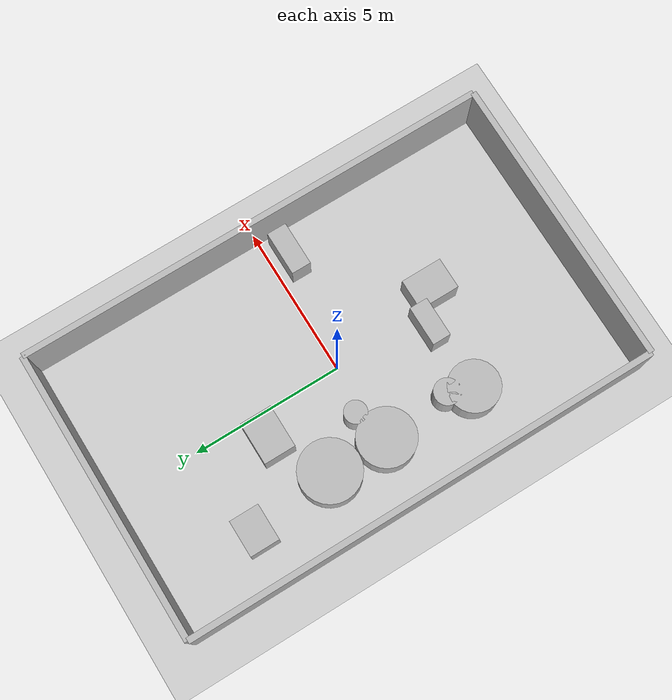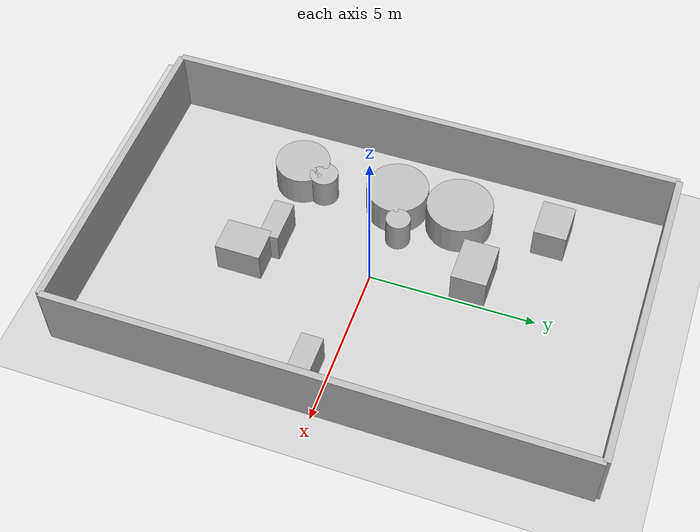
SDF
<?xml version="1.0"?>
<sdf version="1.6">
  <world name="env_15">

    <include><uri>model://ground_plane</uri></include>
    <include><uri>model://sun</uri></include>

    <!-- WALLS -->
    <model name="wall_north"><static>true</static><pose>0 7.864551786896643 1 0 0 0</pose>
      <link name="link"><collision name="collision">
        <geometry><box><size>9.579627580800514 0.2 2</size></box></geometry>
      </collision><visual name="visual">
        <geometry><box><size>9.579627580800514 0.2 2</size></box></geometry>
      </visual></link>
    </model>

    <model name="wall_south"><static>true</static><pose>0 -7.864551786896643 1 0 0 0</pose>
      <link name="link"><collision name="collision">
        <geometry><box><size>9.579627580800514 0.2 2</size></box></geometry>
      </collision><visual name="visual">
        <geometry><box><size>9.579627580800514 0.2 2</size></box></geometry>
      </visual></link>
    </model>

    <model name="wall_east"><static>true</static><pose>4.789813790400257 0 1 0 0 1.57</pose>
      <link name="link"><collision name="collision">
        <geometry><box><size>15.729103573793285 0.2 2</size></box></geometry>
      </collision><visual name="visual">
        <geometry><box><size>15.729103573793285 0.2 2</size></box></geometry>
      </visual></link>
    </model>

    <model name="wall_west"><static>true</static><pose>-4.789813790400257 0 1 0 0 1.57</pose>
      <link name="link"><collision name="collision">
        <geometry><box><size>15.729103573793285 0.2 2</size></box></geometry>
      </collision><visual name="visual">
        <geometry><box><size>15.729103573793285 0.2 2</size></box></geometry>
      </visual></link>
    </model>

    <!-- SENSOR -->

    <model name="lidar_sensor">
      <static>true</static>
      <pose>4.151453831929678 3.6719940415604437 0.4 0 0 0</pose>
      <link name="link">
        <sensor name="lidar" type="ray">
          <pose>0 0 0 0 0 0</pose>
          <visualize>true</visualize>
          <always_on>true</always_on>
          <update_rate>10</update_rate>
          <ray>
            <scan><horizontal>
              <samples>90</samples>
              <resolution>1</resolution>
              <min_angle>-3.14159</min_angle>
              <max_angle>3.14159</max_angle>
            </horizontal></scan>
            <range><min>0.15</min><max>20.0</max><resolution>0.01</resolution></range>
          </ray>
          <plugin name="lidar_plugin" filename="liblidar_plugin.so"/>
        </sensor>
      </link>
    </model>

    <!-- OBSTACLES -->

    <model name="obstacle_0">
      <static>true</static>
      <pose>-2.722922681236206 -0.045222399263666446 0.5 0 0 0</pose>
      <link name="link">
        <collision name="collision">
          <geometry><cylinder><radius>0.94</radius><length>1.0</length></cylinder></geometry>
        </collision>
        <visual name="visual">
          <geometry><cylinder><radius>0.94</radius><length>1.0</length></cylinder></geometry>
        </visual>
      </link>
    </model>

    <model name="obstacle_1">
      <static>true</static>
      <pose>3.793261974812274 -0.6106725539032274 0.5 0 0 0</pose>
      <link name="link">
        <collision name="collision">
          <geometry><box><size>1.48 0.65 1.0</size></box></geometry>
        </collision>
        <visual name="visual">
          <geometry><box><size>1.48 0.65 1.0</size></box></geometry>
        </visual>
      </link>
    </model>

    <model name="obstacle_2">
      <static>true</static>
      <pose>-3.0182148924864114 4.7042170086419155 0.5 0 0 0</pose>
      <link name="link">
        <collision name="collision">
          <geometry><box><size>1.22 0.98 1.0</size></box></geometry>
        </collision>
        <visual name="visual">
          <geometry><box><size>1.22 0.98 1.0</size></box></geometry>
        </visual>
      </link>
    </model>

    <model name="obstacle_3">
      <static>true</static>
      <pose>-0.8058827609622488 2.91829141108388 0.5 0 0 0</pose>
      <link name="link">
        <collision name="collision">
          <geometry><box><size>1.42 1.05 1.0</size></box></geometry>
        </collision>
        <visual name="visual">
          <geometry><box><size>1.42 1.05 1.0</size></box></geometry>
        </visual>
      </link>
    </model>

    <model name="obstacle_4">
      <static>true</static>
      <pose>-2.509185332735009 -2.3199409459169944 0.5 0 0 0</pose>
      <link name="link">
        <collision name="collision">
          <geometry><cylinder><radius>0.43</radius><length>1.0</length></cylinder></geometry>
        </collision>
        <visual name="visual">
          <geometry><cylinder><radius>0.43</radius><length>1.0</length></cylinder></geometry>
        </visual>
      </link>
    </model>

    <model name="obstacle_5">
      <static>true</static>
      <pose>0.5671246375738139 -3.6757961164221586 0.5 0 0 0</pose>
      <link name="link">
        <collision name="collision">
          <geometry><box><size>1.04 1.36 1.0</size></box></geometry>
        </collision>
        <visual name="visual">
          <geometry><box><size>1.04 1.36 1.0</size></box></geometry>
        </visual>
      </link>
    </model>

    <model name="obstacle_6">
      <static>true</static>
      <pose>-1.5921912417611117 0.33731946538706303 0.5 0 0 0</pose>
      <link name="link">
        <collision name="collision">
          <geometry><cylinder><radius>0.37</radius><length>1.0</length></cylinder></geometry>
        </collision>
        <visual name="visual">
          <geometry><cylinder><radius>0.37</radius><length>1.0</length></cylinder></geometry>
        </visual>
      </link>
    </model>

    <model name="obstacle_7">
      <static>true</static>
      <pose>-2.7900454281942517 -3.0999984532019527 0.5 0 0 0</pose>
      <link name="link">
        <collision name="collision">
          <geometry><cylinder><radius>0.83</radius><length>1.0</length></cylinder></geometry>
        </collision>
        <visual name="visual">
          <geometry><cylinder><radius>0.83</radius><length>1.0</length></cylinder></geometry>
        </visual>
      </link>
    </model>

    <model name="obstacle_8">
      <static>true</static>
      <pose>-2.6885730516457853 1.9097140797615957 0.5 0 0 0</pose>
      <link name="link">
        <collision name="collision">
          <geometry><cylinder><radius>1.0</radius><length>1.0</length></cylinder></geometry>
        </collision>
        <visual name="visual">
          <geometry><cylinder><radius>1.0</radius><length>1.0</length></cylinder></geometry>
        </visual>
      </link>
    </model>

    <model name="obstacle_9">
      <static>true</static>
      <pose>-0.41499769595526503 -3.0452480133414452 0.5 0 0 0</pose>
      <link name="link">
        <collision name="collision">
          <geometry><box><size>1.33 0.61 1.0</size></box></geometry>
        </collision>
        <visual name="visual">
          <geometry><box><size>1.33 0.61 1.0</size></box></geometry>
        </visual>
      </link>
    </model>

  </world>
</sdf>
